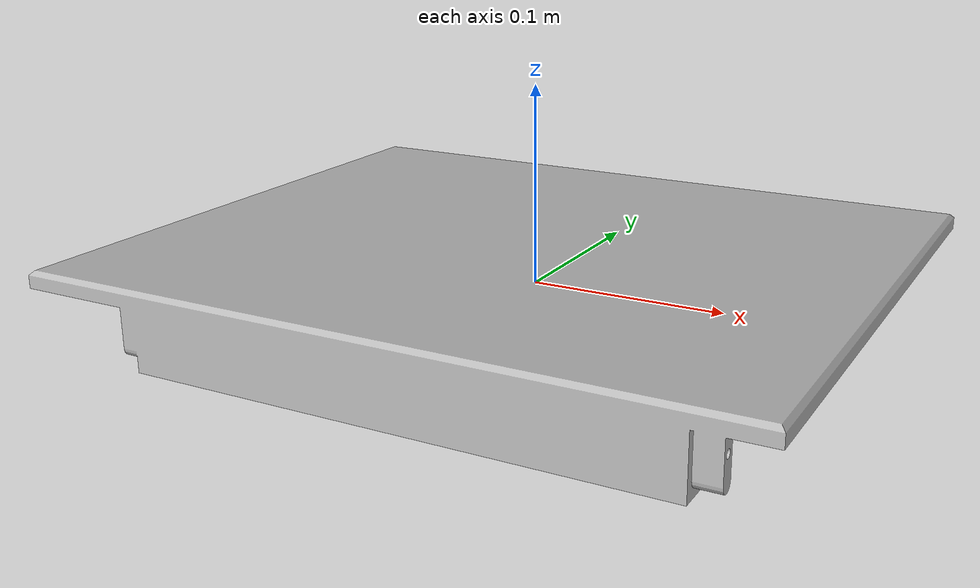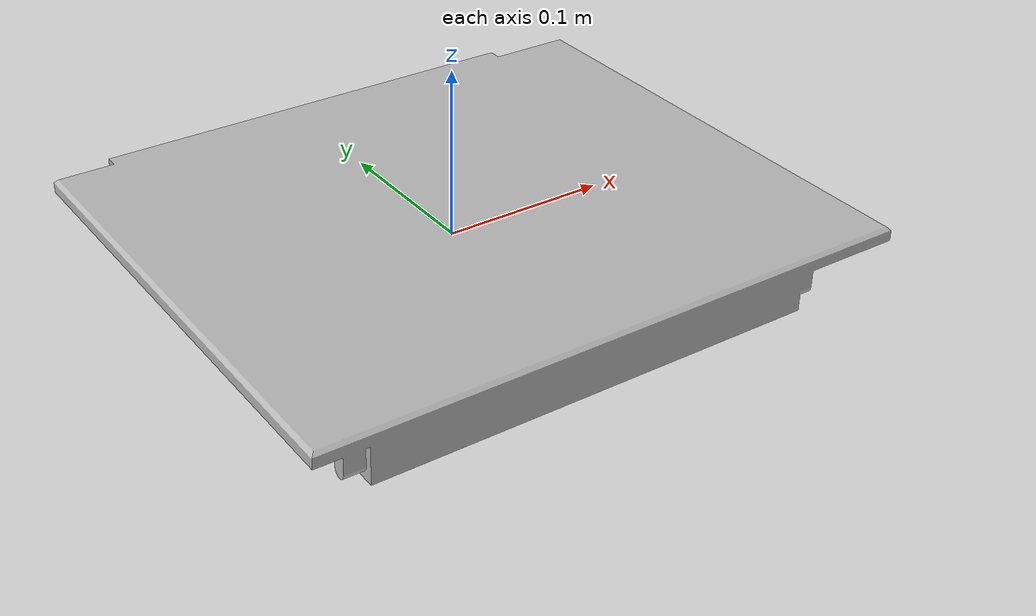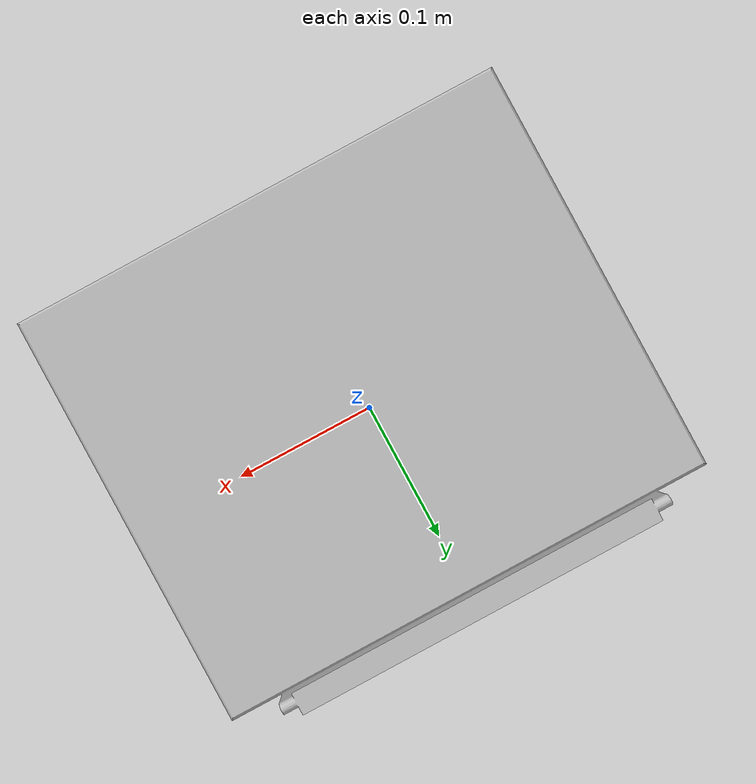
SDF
<?xml version='1.0'?>
<sdf version="1.4">
  <model name="chair_ivar_part4">
    <link name="mesh_link4">
      <visual name="visual4">
        <geometry>
          <mesh>
            <uri>model://ivar_chair/meshes/4.stl</uri>
            <scale>0.00065 0.00065 0.00065</scale>
          </mesh>
        </geometry>
      </visual>
      <collision name="collision4">
        <geometry>
          <mesh>
            <uri>model://ivar_chair/meshes/4.stl</uri>
            <scale>0.00065 0.00065 0.00065</scale>
          </mesh>
        </geometry>
      </collision>
    </link>
  </model>
</sdf>
